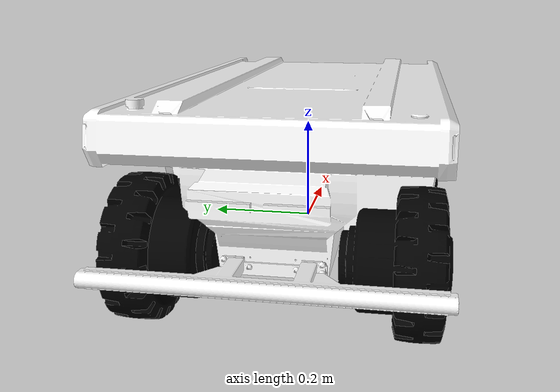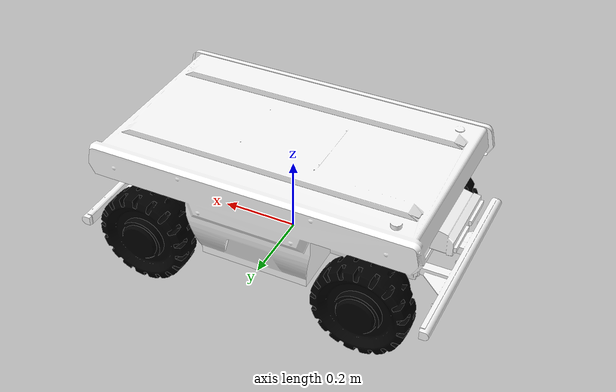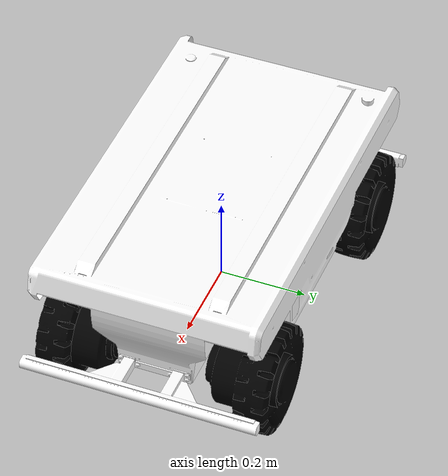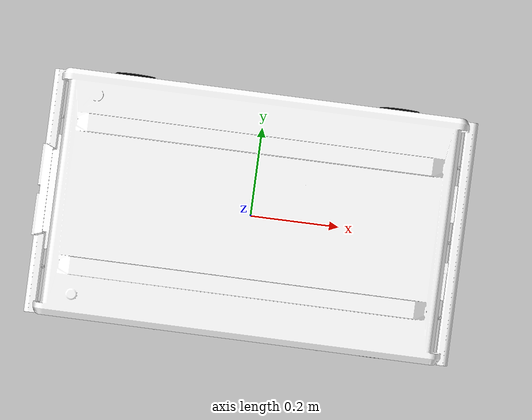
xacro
<?xml version="1.0" encoding="utf-8"?>

<robot name="fw_max" xmlns:xacro="http://www.ros.org/wiki/xacro">

    <xacro:include filename="$(find fw-max)/urdf/macros.xacro" />

    <link name="base_footprint">
    </link>

    <link name="base_link">
        <visual>
            <geometry>
                <mesh filename="package://fw-max/meshes/fw-max-chassis.STL" scale="1 1 1"/>
            </geometry>
            <origin xyz="0.48 0.275 -0.01" rpy="1.57 0 -1.57" />
            <material name="white">
                <color rgba="1 1 1 1" />
            </material>
        </visual>
        <collision>
            <geometry>
                <box size="0.96 0.55 0.25" />
            </geometry>
            <origin xyz="0.0 0.0 0.0" rpy="0.0 0.0 0.0" />
        </collision>
        <inertial>
        <origin xyz="0 0 0" />
        <mass value="75" />
        <inertia
            ixx="2.8658" ixy="0" ixz="0"
            iyy="6.7327" iyz="0"
            izz="7.6506"
        />
        </inertial>

    </link>

    <joint name="base_link2base_footprint" type="fixed">
        <parent link="base_footprint" />
        <child link="base_link"/>
        <origin xyz="0 0 0.032" />
    </joint>

    <link name="left_steering_hinge">
        <visual>
            <geometry>
                <cylinder radius="0.02" length="0.005" />
            </geometry>
            <origin xyz="0 0 0" rpy="1.57 0 0" />
            <material name="black">
                <color rgba="0.0 0.0 0.0 1.0" />
            </material>
        </visual>
        <collision>
            <geometry>
                <cylinder radius="0.01" length="0.005" />
            </geometry>
            <origin xyz="0.0 0.0 0.0" rpy="1.57 0.0 0.0" />
        </collision>
        <inertial>
            <origin xyz="0 0 0" />
            <mass value="1" />
            <inertia ixx="2.7E-05" ixy="0" ixz="0" iyy="2.7E-05" iyz="0" izz="5E-05" />
        </inertial>
    </link>

    <joint name="left_steering_hinge_joint" type="revolute">
        <parent link="base_link" />
        <child link="left_steering_hinge" />
        <origin xyz="0.3 0.225 0" />
        <axis xyz="0 0 1" />
        <limit lower="-1.57" upper="1.57" effort="10.0" velocity="50.0"/>
    </joint>

    <link name="left_front_wheel">
        <visual>
            <geometry>
                <mesh filename="package://fw-max/meshes/fw-max-luntai.STL" scale="1 1 1"/>
            </geometry>
            <origin xyz="0.135 0.055 0.135" rpy="0 3.14 1.57" />
            <material name="black">
                <color rgba="0.0 0.0 0.0 1.0" />
            </material>
        </visual>
        <collision>
            <geometry>
                <cylinder radius="0.125" length="0.08" />
            </geometry>
            <origin xyz="0.0 0.0 0.0" rpy="1.57 0.0 0.0" />
        </collision>
        <inertial>
            <origin xyz="0 0 0" />
            <mass value="10" />
            <inertia
                ixx="0.06040" ixy="0" ixz="0"
                iyy="0.06040" iyz="0"
                izz="0.07812"
            />
        </inertial>
    </link>

    <joint name="left_front_wheel_joint" type="continuous">
        <parent link="left_steering_hinge" />
        <child link="left_front_wheel" />
        <origin xyz="0 0 0" />
        <axis xyz="0 1 0" />
        <limit effort="10" velocity="1000" />
    </joint>

    <link name="right_steering_hinge">
        <visual>
            <geometry>
                 <cylinder radius="0.02" length="0.005" />
            </geometry>
            <origin xyz="0 0 0" rpy="1.57 0 0" />
            <material name="black">
                <color rgba="0.0 0.0 0.0 1.0" />
            </material>
        </visual>
        <collision>
            <geometry>
                <cylinder radius="0.01" length="0.005" />
            </geometry>
            <origin xyz="0.0 0.0 0.0" rpy="1.57 0.0 0.0" />
        </collision>
        <inertial>
            <origin xyz="0 0 0" />
            <mass value="1" />
            <inertia ixx="2.7E-05" ixy="0" ixz="0" iyy="2.7E-05" iyz="0" izz="5E-05" />
        </inertial>
    </link>

    <joint name="right_steering_hinge_joint" type="revolute">
        <parent link="base_link" />
        <child link="right_steering_hinge" />
        <origin xyz="0.3 -0.225 0" />
        <axis xyz="0 0 1" />
        <limit lower="-1.57" upper="1.57" effort="10.0" velocity="50.0"/>
    </joint>

     <link name="right_front_wheel">
        <visual>
            <geometry>
                <mesh filename="package://fw-max/meshes/fw-max-luntai.STL" scale="1 1 1"/>
            </geometry>
            <origin xyz="0.135 -0.055 -0.135" rpy="0 0 1.57" />
            <material name="black">
                <color rgba="0.0 0.0 0.0 1.0" />
            </material>
        </visual>
        <collision>
            <geometry>
                <cylinder radius="0.125" length="0.08" />
            </geometry>
            <origin xyz="0.0 0.0 0.0" rpy="1.57 0.0 0.0" />
        </collision>
        <inertial>
            <origin xyz="0 0 0" />
            <mass value="10" />
            <inertia
                ixx="0.06040" ixy="0" ixz="0"
                iyy="0.06040" iyz="0"
                izz="0.07812"
            />
        </inertial>
    </link>

    <joint name="right_front_wheel_joint" type="continuous">
        <parent link="right_steering_hinge" />
        <child link="right_front_wheel" />
        <origin xyz="0 0 0" />
        <axis xyz="0 1 0" />
        <limit effort="10" velocity="1000" />
    </joint>

    <link name="rear_left_steering_hinge">
        <visual>
            <geometry>
                <cylinder radius="0.02" length="0.005" />
            </geometry>
            <origin xyz="0 0 0" rpy="1.57 0 0" />
            <material name="black">
                <color rgba="0.0 0.0 0.0 1.0" />
            </material>
        </visual>
        <collision>
            <geometry>
                <cylinder radius="0.01" length="0.005" />
            </geometry>
            <origin xyz="0.0 0.0 0.0" rpy="1.57 0.0 0.0" />
        </collision>
        <inertial>
            <origin xyz="0 0 0" />
            <mass value="1" />
            <inertia ixx="2.7E-05" ixy="0" ixz="0" iyy="2.7E-05" iyz="0" izz="5E-05" />
        </inertial>
    </link>

    <joint name="rear_left_steering_hinge_joint" type="revolute">
        <parent link="base_link" />
        <child link="rear_left_steering_hinge" />
        <origin xyz="-0.3 0.225 0" />
        <axis xyz="0 0 1" />
        <limit lower="-1.57" upper="1.57" effort="10.0" velocity="50.0"/>
    </joint>

    <link name="left_rear_wheel">
        <visual>
            <geometry>
                <mesh filename="package://fw-max/meshes/fw-max-luntai.STL" scale="1 1 1"/>
            </geometry>
            <origin xyz="0.135 0.055 0.135" rpy="0 3.14 1.57" />
            <material name="black">
                <color rgba="0.0 0.0 0.0 1.0" />
            </material>
        </visual>
        <collision>
            <geometry>
                <cylinder radius="0.125" length="0.08" />
            </geometry>
            <origin xyz="0.0 0.0 0.0" rpy="1.57 0.0 0.0" />
        </collision>
        <inertial>
            <origin xyz="0 0 0" />
            <mass value="10" />
            <inertia
                ixx="0.06040" ixy="0" ixz="0"
                iyy="0.06040" iyz="0"
                izz="0.07812"
            />
        </inertial>
    </link>

    <joint name="left_rear_wheel_joint" type="continuous">
        <parent link="rear_left_steering_hinge" />
        <child link="left_rear_wheel" />
        <origin xyz="0 0.0 0" />
        <axis xyz="0 1 0" />
        <limit effort="10" velocity="1000" />
    </joint>

    <link name="rear_right_steering_hinge">
        <visual>
            <geometry>
                <cylinder radius="0.02" length="0.005" />
            </geometry>
            <origin xyz="0 0 0" rpy="1.57 0 0" />
            <material name="black">
                <color rgba="0.0 0.0 0.0 1.0" />
            </material>
        </visual>
        <collision>
            <geometry>
                <cylinder radius="0.01" length="0.005" />
            </geometry>
            <origin xyz="0.0 0.0 0.0" rpy="1.57 0.0 0.0" />
        </collision>
        <inertial>
            <origin xyz="0 0 0" />
            <mass value="1" />
            <inertia ixx="2.7E-05" ixy="0" ixz="0" iyy="2.7E-05" iyz="0" izz="5E-05" />
        </inertial>
    </link>

    <joint name="rear_right_steering_hinge_joint" type="revolute">
        <parent link="base_link" />
        <child link="rear_right_steering_hinge" />
        <origin xyz="-0.3 -0.225 0" />
        <axis xyz="0 0 1" />
        <limit lower="-1.57" upper="1.57" effort="10.0" velocity="50.0"/>
    </joint>

    <link name="right_rear_wheel">
        <visual>
            <geometry>
                <mesh filename="package://fw-max/meshes/fw-max-luntai.STL" scale="1 1 1"/>
            </geometry>
            <origin xyz="0.135 -0.055 -0.135" rpy="0 0 1.57" />
            <material name="black">
                <color rgba="0.0 0.0 0.0 1.0" />
            </material>
        </visual>
        <collision>
            <geometry>
                <cylinder radius="0.125" length="0.08" />
            </geometry>
            <origin xyz="0.0 0.0 0.0" rpy="1.57 0.0 0.0" />
        </collision>
        <inertial>
            <origin xyz="0 0 0" />
            <mass value="10" />
            <inertia
                ixx="0.06040" ixy="0" ixz="0"
                iyy="0.06040" iyz="0"
                izz="0.07812"
            />
        </inertial>
    </link>

    <joint name="right_rear_wheel_joint" type="continuous">
        <parent link="rear_right_steering_hinge" />
        <child link="right_rear_wheel" />
        <origin xyz="0 0.0 0" />
        <axis xyz="0 1 0" />
        <limit effort="10" velocity="1000" />
    </joint>

  <xacro:include filename="$(find fw-max)/urdf/fw-max.gazebo" />

</robot>
